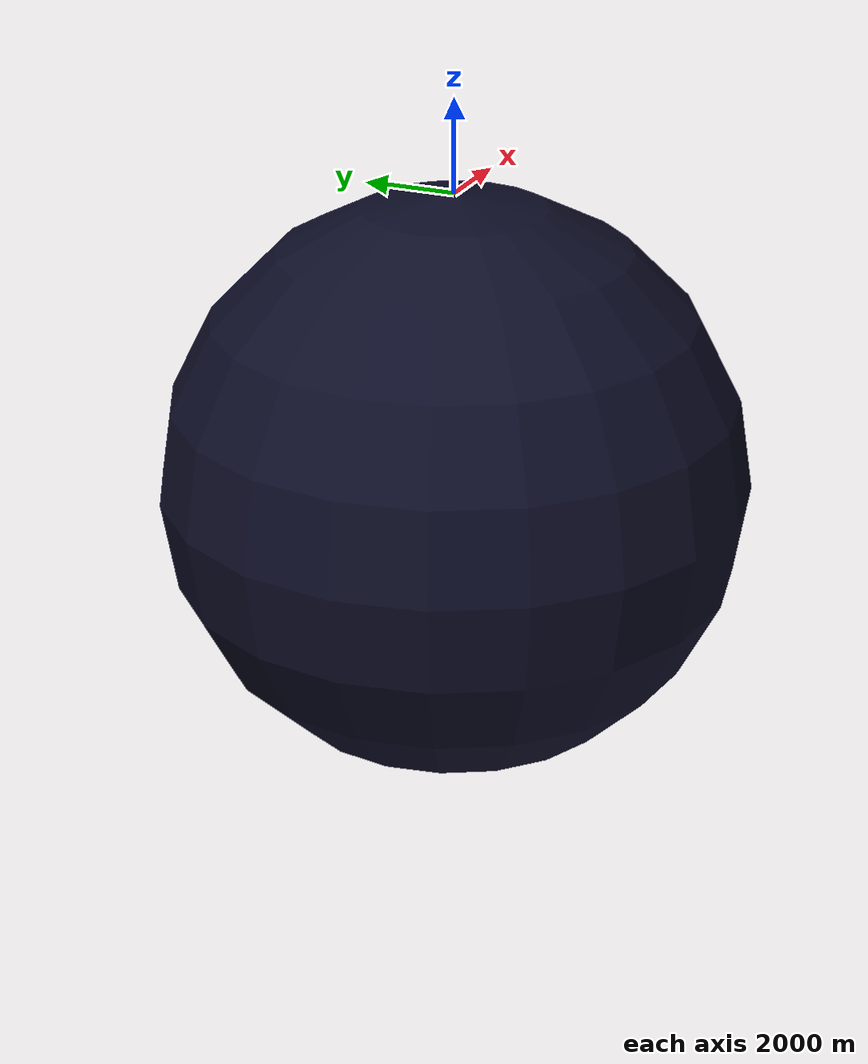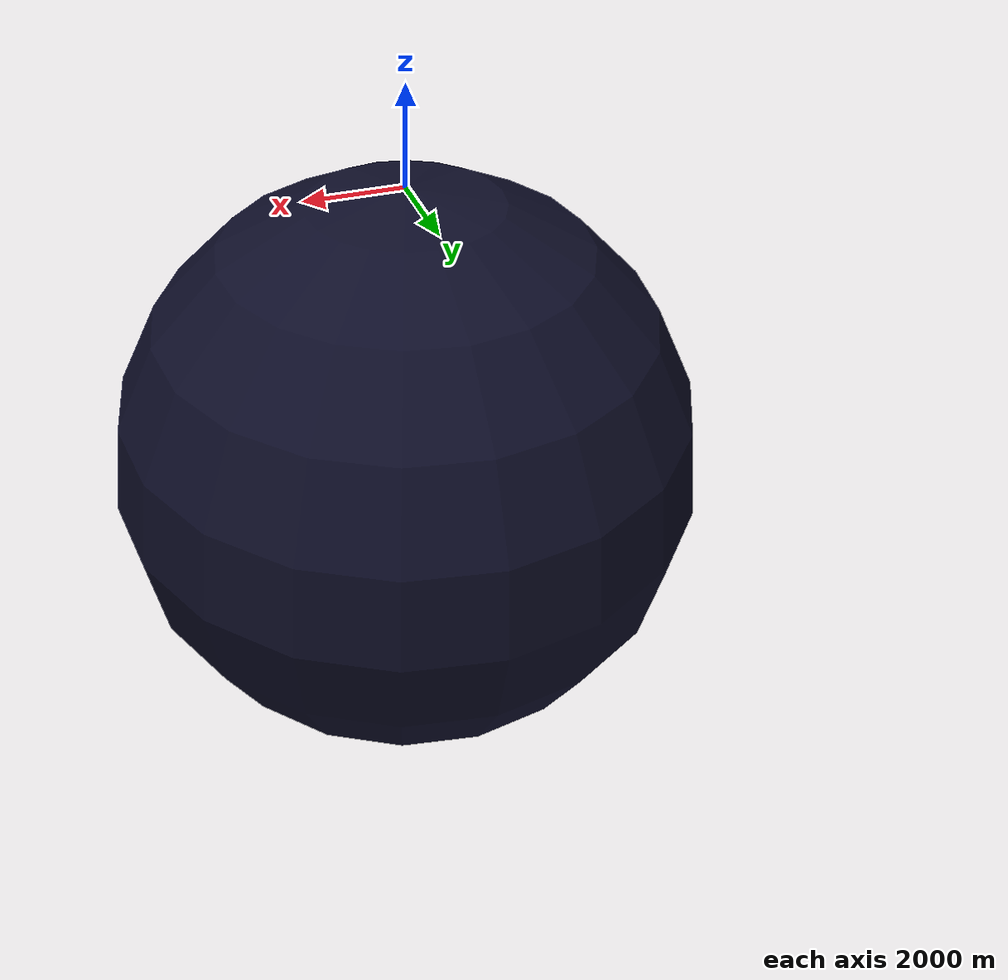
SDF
<?xml version="1.0"?>
<sdf version="1.8">
  <world name="leo_world">

    <!-- Zero gravity -->
    <gravity>0 0 0</gravity>

    <!-- Scene / background and lighting -->
    <scene>
      <ambient>0.4 0.4 0.4 1</ambient>
      <background>0.05 0.05 0.1 1</background>
      <shadows>false</shadows>
      <grid>false</grid>
    </scene>

    <physics name="zero_g" type="ode">
      <real_time_update_rate>1000</real_time_update_rate>
      <max_step_size>0.001</max_step_size>
    </physics>

    <!-- Directional "sun" light for visibility -->
    <light name="sun" type="directional">
      <pose>10 10 10 0 0 0</pose>
      <direction>-1 -1 -1</direction>
      <diffuse>0.8 0.8 0.8 1</diffuse>
      <specular>0.3 0.3 0.3 1</specular>
      <cast_shadows>false</cast_shadows>
    </light>

    <!-- Additional fill light -->
    <light name="fill_light" type="point">
      <pose>-10 0 5 0 0 0</pose>
      <diffuse>0.5 0.5 0.5 1</diffuse>
      <specular>0.1 0.1 0.1 1</specular>
      <attenuation>
        <range>100</range>
        <constant>0.5</constant>
        <linear>0.01</linear>
        <quadratic>0.001</quadratic>
      </attenuation>
    </light>

    <!-- GUI camera settings -->
    <gui fullscreen="0">
      <camera name="user_camera">
        <pose>-15 -15 10 0 0.4 0.8</pose>
        <view_controller>orbit</view_controller>
        <projection_type>perspective</projection_type>
      </camera>
    </gui>

    <!-- Earth reference (large, far away) -->
    <model name="earth_reference">
      <static>true</static>
      <pose>0 0 -6371 0 0 0</pose>
      <link name="earth_link">
        <visual name="earth_visual">
          <geometry><sphere><radius>6371</radius></sphere></geometry>
          <material><ambient>0.05 0.05 0.15 1</ambient></material>
        </visual>
      </link>
    </model>

    <!-- Include models (look for them in GZ resource path) -->
    <include>
      <uri>model://dock</uri>
      <pose>15 5 3 0 0 0</pose> <!-- dock starts at distance ~16 meters -->
    </include>

    <include>
      <uri>model://chaser</uri>
      <pose>0 0 0 0 0 0</pose> <!-- chaser starts at origin -->
    </include>

    <!-- System plugin: thruster controller -->
    <plugin name="ThrusterController" filename="libthruster_controller.dylib">
      <!-- controller parameters -->
      <target_model>chaser</target_model>
      <dock_model>dock</dock_model>
      <reach_distance>0.6</reach_distance> <!-- success threshold (meters) -->
      <kp>1.8</kp>    <!-- proportional gain for interception -->
      <kd>2.2</kd>    <!-- derivative gain for smooth damping -->
      <max_force>12.0</max_force> <!-- N, sufficient for interception -->
      <dock_thrust_force>4.0</dock_thrust_force> <!-- N, dock's continuous thrust -->
      <max_dock_speed>0.35</max_dock_speed> <!-- m/s, maximum dock velocity -->
    </plugin>

  </world>
</sdf>

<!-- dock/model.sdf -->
<sdf version="1.8">
  <model name="dock">
    <static>false</static>
    <link name="body">
      <pose>0 0 0 0 0 0</pose>
      <inertial>
        <mass>20.0</mass>
        <inertia>
          <ixx>1.0</ixx>
          <iyy>1.0</iyy>
          <izz>1.0</izz>
        </inertia>
      </inertial>

      <visual name="body_visual">
        <geometry><box><size>1.0 1.0 1.0</size></box></geometry>
        <material><ambient>0.8 0.3 0.1 1</ambient><diffuse>0.9 0.4 0.2 1</diffuse></material>
      </visual>

      <collision name="body_collision">
        <geometry><box><size>1.0 1.0 1.0</size></box></geometry>
      </collision>

      <!-- Optional small marker for the dock's docking port -->
      <visual name="port">
        <pose>0.5 0 0 0 0 0</pose>
        <geometry><sphere><radius>0.05</radius></sphere></geometry>
        <material><ambient>0 1 0 1</ambient></material>
      </visual>
    </link>
  </model>
</sdf>

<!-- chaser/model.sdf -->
<sdf version="1.8">
  <model name="chaser">
    <static>false</static>

    <link name="body">
      <pose>0 0 0 0 0 0</pose>
      <inertial>
        <mass>10.0</mass>
        <inertia>
          <ixx>0.5</ixx>
          <iyy>0.5</iyy>
          <izz>0.5</izz>
        </inertia>
      </inertial>

      <visual name="body_visual">
        <geometry><box><size>0.8 0.6 0.4</size></box></geometry>
        <material><ambient>0.2 0.6 0.9 1</ambient><diffuse>0.3 0.7 1.0 1</diffuse></material>
      </visual>

      <collision name="body_collision">
        <geometry><box><size>0.8 0.6 0.4</size></box></geometry>
      </collision>

      <!-- sides: thruster markers (visual only) -->
      <visual name="thruster_left">
        <pose>0 0.4 0 0 0 0</pose>
        <geometry><cylinder><radius>0.03</radius><length>0.06</length></cylinder></geometry>
        <material><ambient>0.9 0.2 0.2 1</ambient></material>
      </visual>
      <visual name="thruster_right">
        <pose>0 -0.4 0 0 0 0</pose>
        <geometry><cylinder><radius>0.03</radius><length>0.06</length></cylinder></geometry>
        <material><ambient>0.9 0.2 0.2 1</ambient></material>
      </visual>
      <visual name="thruster_front">
        <pose>0.4 0 0 0 0 0</pose>
        <geometry><cylinder><radius>0.03</radius><length>0.06</length></cylinder></geometry>
        <material><ambient>0.9 0.2 0.2 1</ambient></material>
      </visual>

      <!-- Robotic Arm Assembly -->
      <!-- Arm Base -->
      <visual name="arm_base">
        <pose>0.4 0 0 0 0 0</pose>
        <geometry><cylinder><radius>0.06</radius><length>0.08</length></cylinder></geometry>
        <material><ambient>0.5 0.5 0.5 1</ambient><diffuse>0.6 0.6 0.6 1</diffuse></material>
      </visual>

      <!-- Lower Arm Segment -->
      <visual name="arm_lower">
        <pose>0.55 0 0 0 1.5708 0</pose>
        <geometry><cylinder><radius>0.03</radius><length>0.25</length></cylinder></geometry>
        <material><ambient>0.7 0.7 0.7 1</ambient><diffuse>0.8 0.8 0.8 1</diffuse></material>
      </visual>

      <!-- Elbow Joint -->
      <visual name="arm_elbow">
        <pose>0.675 0 0 0 0 0</pose>
        <geometry><sphere><radius>0.04</radius></sphere></geometry>
        <material><ambient>0.5 0.5 0.5 1</ambient><diffuse>0.6 0.6 0.6 1</diffuse></material>
      </visual>

      <!-- Upper Arm Segment -->
      <visual name="arm_upper">
        <pose>0.8 0 0 0 1.5708 0</pose>
        <geometry><cylinder><radius>0.025</radius><length>0.2</length></cylinder></geometry>
        <material><ambient>0.7 0.7 0.7 1</ambient><diffuse>0.8 0.8 0.8 1</diffuse></material>
      </visual>

      <!-- Wrist Joint -->
      <visual name="arm_wrist">
        <pose>0.9 0 0 0 0 0</pose>
        <geometry><sphere><radius>0.035</radius></sphere></geometry>
        <material><ambient>0.5 0.5 0.5 1</ambient><diffuse>0.6 0.6 0.6 1</diffuse></material>
      </visual>

      <!-- Gripper Base -->
      <visual name="gripper_base">
        <pose>0.95 0 0 0 1.5708 0</pose>
        <geometry><cylinder><radius>0.02</radius><length>0.06</length></cylinder></geometry>
        <material><ambient>0.3 0.3 0.3 1</ambient><diffuse>0.4 0.4 0.4 1</diffuse></material>
      </visual>

      <!-- Left Gripper Finger -->
      <visual name="gripper_left">
        <pose>0.98 0.03 0 0 0 0</pose>
        <geometry><box><size>0.06 0.015 0.04</size></box></geometry>
        <material><ambient>0.9 0.6 0.1 1</ambient><diffuse>1.0 0.7 0.2 1</diffuse></material>
      </visual>

      <!-- Right Gripper Finger -->
      <visual name="gripper_right">
        <pose>0.98 -0.03 0 0 0 0</pose>
        <geometry><box><size>0.06 0.015 0.04</size></box></geometry>
        <material><ambient>0.9 0.6 0.1 1</ambient><diffuse>1.0 0.7 0.2 1</diffuse></material>
      </visual>

    </link>
  </model>
</sdf>
